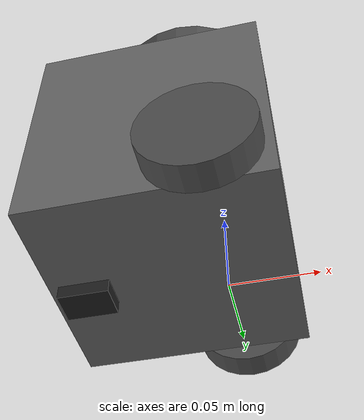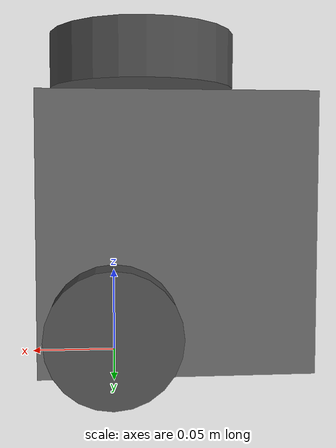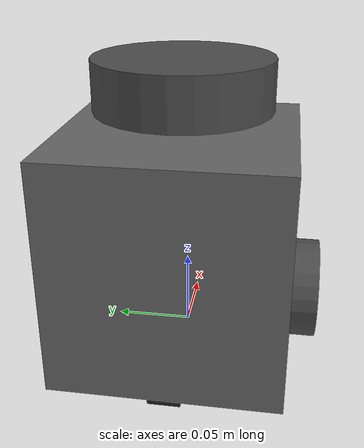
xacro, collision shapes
<?xml version="1.0" ?>
<robot name="model" xmlns:xacro="http://ros.org/wiki/xacro">
  <xacro:include filename="$(find description)/urdf/common_properties.xacro"/>
  <xacro:include filename="$(find description)/urdf/model.gazebo.xacro"/>

  <!-- Base footprint -->
  <link name="base_footprint"/>

  <!-- Base link -->
  <joint name="base_joint" type="fixed">
    <parent link="base_footprint"/>
    <child link="base_link"/>
    <origin xyz="0.0 0.0 0.010" rpy="0 0 0"/>
  </joint>
  <link name="base_link">
    <visual>
      <origin xyz="-0.032 0 0.0" rpy="0 0 0"/>
      <geometry>
        <mesh filename="package://description/meshes/bases/base.stl" scale="0.001 0.001 0.001"/>
      </geometry>
      <material name="light_black"/>
    </visual>
    <collision>
      <origin xyz="-0.032 0 0.070" rpy="0 0 0"/>
      <geometry>
        <box size="0.140 0.140 0.143"/>
      </geometry>
    </collision>
    <inertial>
      <origin xyz="0 0 0" rpy="0 0 0"/>
      <mass value="8.2573504e-01"/>
      <inertia ixx="2.2124416e-03" ixy="-1.2294101e-05" ixz="3.4938785e-05"
               iyy="2.1193702e-03" iyz="-5.0120904e-06"
               izz="2.0064271e-03" />
    </inertial>
  </link>

  <!-- Wheel left -->
  <joint name="wheel_left_joint" type="continuous">
    <parent link="base_link"/>
    <child link="wheel_left_link"/>
    <origin xyz="0.0 0.08 0.023" rpy="-1.57 0 0"/>
    <axis xyz="0 0 1"/>
  </joint>
  <link name="wheel_left_link">
    <visual>
      <origin xyz="0 0 0" rpy="1.57 0 0"/>
      <geometry>
        <mesh filename="package://description/meshes/wheels/left_tire.stl" scale="0.001 0.001 0.001"/>
      </geometry>
      <material name="dark"/>
    </visual>
    <collision>
      <origin xyz="0 0 0" rpy="0 0 0"/>
      <geometry>
        <cylinder length="0.018" radius="0.033"/>
      </geometry>
    </collision>
    <inertial>
      <origin xyz="0 0 0" />
      <mass value="2.8498940e-02" />
      <inertia ixx="1.1175580e-05" ixy="-4.2369783e-11" ixz="-5.9381719e-09"
               iyy="1.1192413e-05" iyz="-1.4400107e-11"
               izz="2.0712558e-05" />
      </inertial>
  </link>

  <!-- Wheel right -->
  <joint name="wheel_right_joint" type="continuous">
    <parent link="base_link"/>
    <child link="wheel_right_link"/>
    <origin xyz="0.0 -0.080 0.023" rpy="-1.57 0 0"/>
    <axis xyz="0 0 1"/>
  </joint>
  <link name="wheel_right_link">
    <visual>
      <origin xyz="0 0 0" rpy="1.57 0 0"/>
      <geometry>
        <mesh filename="package://description/meshes/wheels/right_tire.stl" scale="0.001 0.001 0.001"/>
      </geometry>
      <material name="dark"/>
    </visual>
    <collision>
      <origin xyz="0 0 0" rpy="0 0 0"/>
      <geometry>
        <cylinder length="0.018" radius="0.033"/>
      </geometry>
    </collision>
    <inertial>
      <origin xyz="0 0 0" />
      <mass value="2.8498940e-02" />
      <inertia ixx="1.1175580e-05" ixy="-4.2369783e-11" ixz="-5.9381719e-09"
               iyy="1.1192413e-05" iyz="-1.4400107e-11"
               izz="2.0712558e-05" />
      </inertial>
  </link>

  <!-- Caster back -->
  <joint name="caster_back_joint" type="fixed">
    <parent link="base_link"/>
    <child link="caster_back_link"/>
    <origin xyz="-0.081 0 -0.004" rpy="-1.57 0 0"/>
  </joint>
  <link name="caster_back_link">
    <collision>
      <origin xyz="0 0.001 0" rpy="0 0 0"/>
      <geometry>
        <box size="0.030 0.009 0.020"/>
      </geometry>
    </collision>
    <inertial>
      <origin xyz="0 0 0" />
      <mass value="0.005" />
      <inertia ixx="0.001" ixy="0.0" ixz="0.0"
               iyy="0.001" iyz="0.0"
               izz="0.001" />
    </inertial>
  </link>

  <!-- IMU sensor -->
  <joint name="imu_joint" type="fixed">
    <parent link="base_link"/>
    <child link="imu_link"/>
    <origin xyz="-0.032 0 0.068" rpy="0 0 0"/>
  </joint>
  <link name="imu_link"/>

  <!-- LiDAR sensor -->
  <joint name="scan_joint" type="fixed">
    <parent link="base_link"/>
    <child link="base_scan"/>
    <origin xyz="-0.032 0 0.172" rpy="0 0 0"/>
  </joint>
  <link name="base_scan">
    <visual>
      <origin xyz="0 0 0.0" rpy="0 0 0"/>
      <geometry>
        <mesh filename="package://description/meshes/sensors/lds.stl" scale="0.001 0.001 0.001"/>
      </geometry>
      <material name="dark"/>
    </visual>
    <collision>
      <origin xyz="0.015 0 -0.0065" rpy="0 0 0"/>
      <geometry>
        <cylinder length="0.0315" radius="0.055"/>
      </geometry>
    </collision>
    <inertial>
      <mass value="0.114" />
      <origin xyz="0 0 0" />
      <inertia ixx="0.001" ixy="0.0" ixz="0.0"
               iyy="0.001" iyz="0.0"
               izz="0.001" />
    </inertial>
  </link>

  <!-- d435 sensor -->
  <joint name="camera_joint" type="fixed">
    <parent link="base_link"/>
    <child link="camera_link" />
  </joint>
  <link name="camera_link">
    <visual>
    <origin xyz="0.040 0 0.115" rpy="${M_PI/2} 0 ${M_PI/2}"/>
      <geometry>
        <mesh filename="package://description/meshes/sensors/d435.dae" />
      </geometry>
      <material name="black"/>
    </visual>
    <collision>
      <origin xyz="0.0 0.0 0.0125" rpy="0 0 0"/>
      <geometry>
      <box size="0.02505 0.09 0.025"/>
      </geometry>
    </collision>
    <inertial>
      <mass value="0.564" />
      <origin xyz="0 0 0" />
      <inertia ixx="0.003881243" ixy="0.0" ixz="0.0" iyy="0.000498940" iyz="0.0" izz="0.003879257" />
    </inertial>
  </link>

  <joint name="camera_depth_joint" type="fixed">
    <parent link="camera_link"/>
    <child link="camera_frame"/>
    <origin xyz="0.03 0.0175 0.0125" rpy="0 0 0"/>
  </joint>
  <link name="camera_frame"/>

</robot>

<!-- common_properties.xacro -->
<robot name="xacro_properties" xmlns:xacro="http://ros.org/wiki/xacro">
  <xacro:property name="M_PI" value="3.1415926535897931" />

  <!-- Init colour -->
  <material name="black">
      <color rgba="0.0 0.0 0.0 1.0"/>
  </material>

  <material name="dark">
    <color rgba="0.3 0.3 0.3 1.0"/>
  </material>
  <material name="light_black">
    <color rgba="0.4 0.4 0.4 1.0"/>
  </material>

  <material name="blue">
    <color rgba="0.0 0.0 0.8 1.0"/>
  </material>

  <material name="green">
    <color rgba="0.0 0.8 0.0 1.0"/>
  </material>

  <material name="grey">
    <color rgba="0.5 0.5 0.5 1.0"/>
  </material>

  <material name="orange">
    <color rgba="${255/255} ${108/255} ${10/255} 1.0"/>
  </material>

  <material name="brown">
    <color rgba="${222/255} ${207/255} ${195/255} 1.0"/>
  </material>

  <material name="red">
    <color rgba="0.8 0.0 0.0 1.0"/>
  </material>

  <material name="white">
    <color rgba="1.0 1.0 1.0 1.0"/>
  </material>

</robot>
